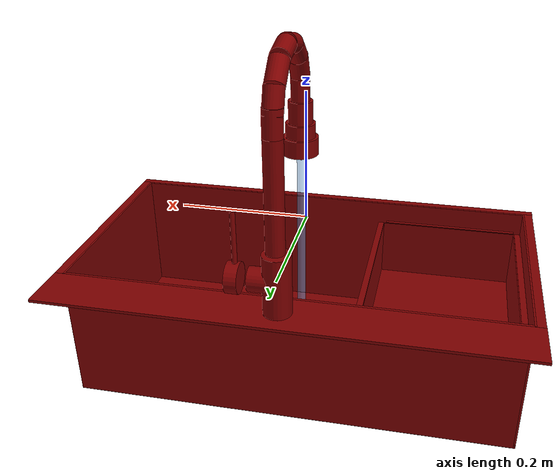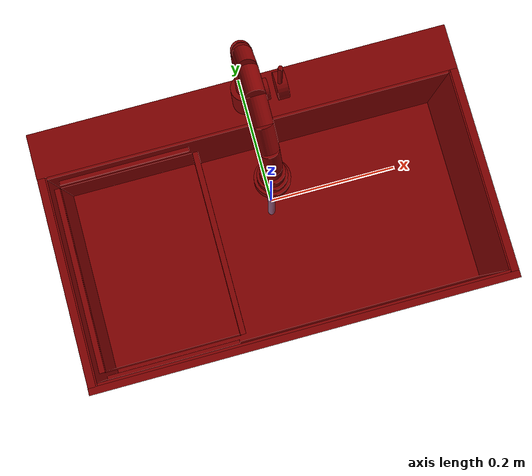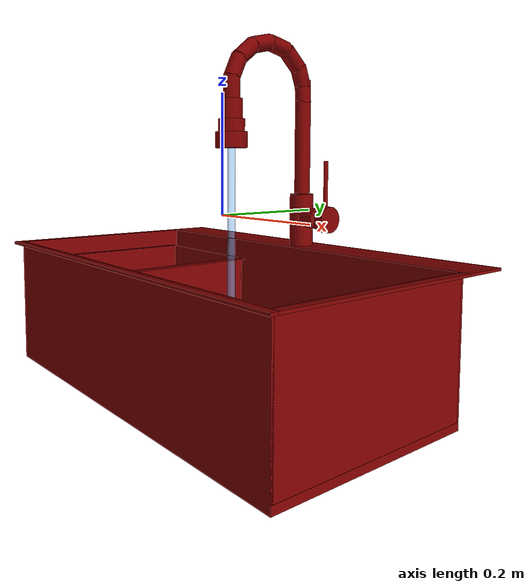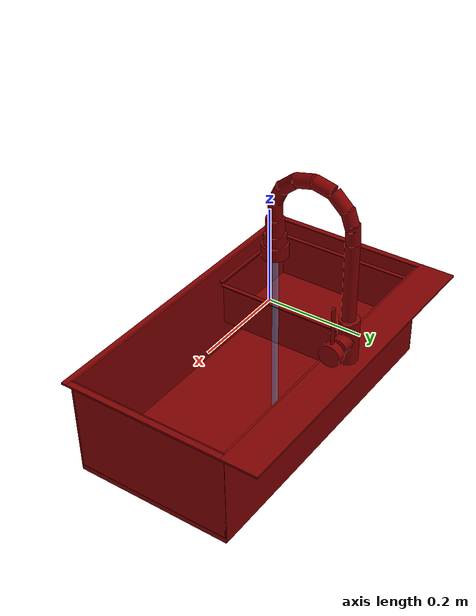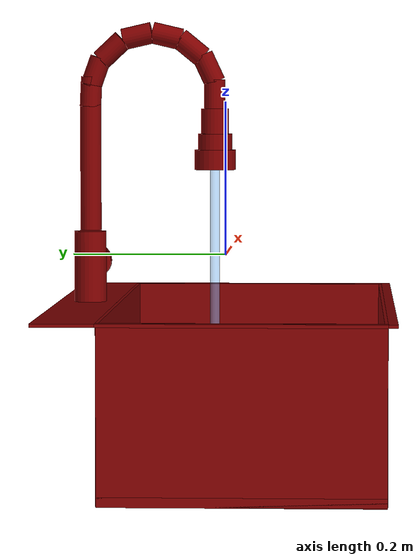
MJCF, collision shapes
<?xml version='1.0' encoding='UTF-8'?>
<mujoco model="model">
  <option timestep="0.002" gravity="0.0 0.0 -9.81"/>
  <compiler angle="radian"/>
  <asset>
    <mesh file="visuals/handle.obj" name="handle_vis"/>
    <mesh file="visuals/Body001.obj" name="Body001_vis"/>
    <mesh file="visuals/Container001.obj" name="Container001_vis"/>
    <mesh file="visuals/spout.obj" name="spout_vis"/>
    <texture file="visuals/T_BC001.png" name="Body001_material" type="2d"/>
    <material name="Body001_material" rgba="1 1 1 1.0" texture="Body001_material" shininess="0.5" specular="1"/>
    <texture file="visuals/T_BC001.png" name="handle_material" type="2d"/>
    <material name="handle_material" rgba="1 1 1 1.0" texture="handle_material" shininess="0.5" specular="1"/>
    <texture file="visuals/T_BC001.png" name="Container001_material" type="2d"/>
    <material name="Container001_material" rgba="1 1 1 1.0" texture="Container001_material" shininess="0.5" specular="1"/>
    <texture file="visuals/T_BC001.png" name="spout_material" type="2d"/>
    <material name="spout_material" rgba="1 1 1 1.0" texture="spout_material" shininess="0.5" specular="1"/>
  </asset>
  <default>
    <default class="visual">
      <geom conaffinity="0" contype="0" group="1" type="mesh"/>
    </default>
    <default class="collision">
      <geom group="0" rgba="0.5 0 0 0.5" solimp="0.998 0.998 0.001" solref="0.001 2"/>
    </default>
    <default class="spawn">
      <geom group="0" rgba="1 1 1 0.5" contype="0" conaffinity="0"/>
      <site group="0" rgba="1 1 1 0.5"/>
    </default>
    <default class="region">
      <geom group="1" conaffinity="0" contype="0" rgba="0 1 0 0"/>
    </default>
  </default>
  <worldbody>
    <body>
      <body name="object">
        <geom mesh="Body001_vis" type="mesh" solimp="0.998 0.998 0.001" solref="0.001 1" friction="0.95 0.3 0.1" class="visual" material="Body001_material"/>
        <geom type="box" pos="0.00073192 -0.03299129 -0.27749539" size="0.3497146666049957 0.17464318871498108 0.006164247635751963" quat="1.0 0.0 0.0 0.0" class="collision"/>
        <geom type="box" pos="-0.34736717 -0.03299129 -0.17230836" size="0.0016155838966369629 0.17464318871498108 0.11041142791509628" quat="1.0 0.0 0.0 0.0" class="collision"/>
        <geom type="box" pos="0.34787598 -0.03299129 -0.17230836" size="0.0021242061629891396 0.17464318871498108 0.11041142791509628" quat="1.0 0.0 0.0 0.0" class="collision"/>
        <geom type="box" pos="0.00212431 -0.20594252 -0.17230836" size="0.3478758931159973 0.0022221729159355164 0.11041142791509628" quat="1.0 0.0 0.0 0.0" class="collision"/>
        <geom type="box" pos="0.00212431 0.14016888 -0.17230836" size="0.3478758931159973 0.0021076053380966187 0.11041142791509628" quat="1.0 0.0 0.0 0.0" class="collision"/>
        <geom type="box" pos="-0.00018215 -0.21391224 -0.06405789" size="0.361817866563797 0.00599999725818634 0.002162673743441701" quat="1.0 0.0 0.0 0.0" class="collision"/>
        <geom type="box" pos="-0.00018215 0.18113536 -0.06405790" size="0.361817866563797 0.03885887563228607 0.002162670250982046" quat="1.0 0.0 0.0 0.0" class="collision"/>
        <geom type="box" pos="-0.35508907 -0.03311330 -0.06405790" size="0.006599545478820801 0.17538979649543762 0.002162670250982046" quat="1.0 0.0 0.0 0.0" class="collision"/>
        <geom type="box" pos="0.35506848 -0.03311330 -0.06405790" size="0.006599545478820801 0.17538979649543762 0.002162670250982046" quat="1.0 0.0 0.0 0.0" class="collision"/>
        <geom type="cylinder" pos="0.00371286 0.17872193 -0.01631998" size="0.021033236756920815 0.046931710094213486" quat="1.0 0.0 0.0 0.0" class="collision"/>
        <geom type="cylinder" pos="0.01977696 0.17872193 -0.01154126" size="0.01805560290813446 0.02354067750275135" quat="0.7071068286895752 -0.0 0.7071067690849304 0.0" class="collision"/>
        <geom type="box" pos="-0.22118750 -0.20119131 -0.09815853" size="0.1124766394495964 0.0037056831642985344 0.001917208544909954" quat="1.0 0.0 0.0 0.0" class="collision"/>
        <geom type="box" pos="-0.22120239 0.13461367 -0.09857126" size="0.11257906258106232 0.0037056945730000734 0.0019172141328454018" quat="1.0 0.0 0.0 0.0" class="collision"/>
        <geom type="cylinder" pos="0.19732039 0.01954303 -0.29575208" size="0.05640081316232681 0.006049513351172209" quat="1.0 0.0 0.0 0.0" class="collision"/>
        <body name="handle">
          <joint axis="1.0 0.0 0.0" pos="0.06256294 0.17883094 -0.01293303" limited="true" name="handle_temp_joint" type="hinge" range="-0.7853981633974483 0.7853981633974483" damping="0.5" frictionloss="1" armature="2"/>
          <joint axis="0.0 1.0 0.0" pos="0.06256294 0.17883094 -0.01293303" limited="true" name="handle_joint" type="hinge" range="0 0.5" damping="0.5" frictionloss="1" armature="2"/>
          <geom mesh="handle_vis" type="mesh" solimp="0.998 0.998 0.001" solref="0.001 1" friction="0.95 0.3 0.1" class="visual" material="handle_material"/>
          <geom type="cylinder" pos="0.06461661 0.17900275 -0.01212313" size="0.022960344329476357 0.00931832380592823" quat="0.7071068286895752 -0.0 0.7071067690849304 0.0" class="collision"/>
          <geom name="handle_main" type="cylinder" pos="0.06255361 0.17841353 0.05028378" size="0.0037799293641000986 0.03921017423272133" quat="1.0 0.0 0.0 0.0" class="collision"/>
        </body>
        <body name="Container001">
          <joint axis="0.0 0.0 1.0" pos="-0.22014070 -0.03248349 -0.14380588" limited="true" name="Container001_joint" range="0.0 0.1" type="slide" damping="1" frictionloss="1" armature=".01" stiffness="0.05"/>
          <geom mesh="Container001_vis" type="mesh" solimp="0.998 0.998 0.001" solref="0.001 1" friction="0.95 0.3 0.1" class="visual" material="Container001_material"/>
          <geom type="box" pos="-0.09991594 -0.03248349 -0.09486530" size="0.004775255918502808 0.15808671712875366 0.0010909452103078365" quat="1.0 0.0 0.0 0.0" class="collision"/>
          <geom type="box" pos="-0.33969355 -0.03248349 -0.09486530" size="0.004775255918502808 0.15808671712875366 0.0010909452103078365" quat="1.0 0.0 0.0 0.0" class="collision"/>
          <geom type="box" pos="-0.10419892 -0.03248349 -0.14392597" size="0.0012088071089237928 0.15808671712875366 0.04981043562293053" quat="1.0 0.0 0.0 0.0" class="collision"/>
          <geom type="box" pos="-0.33457536 -0.03248349 -0.14392597" size="0.0012088071089237928 0.15808671712875366 0.04981043562293053" quat="1.0 0.0 0.0 0.0" class="collision"/>
          <geom type="box" pos="-0.22012840 -0.19054592 -0.14392597" size="0.11565577983856201 0.0008009698358364403 0.04981043562293053" quat="1.0 0.0 0.0 0.0" class="collision"/>
          <geom type="box" pos="-0.22012840 0.12608116 -0.14392597" size="0.11565577983856201 0.000787236203905195 0.04981043562293053" quat="1.0 0.0 0.0 0.0" class="collision"/>
          <geom type="box" pos="-0.22012840 -0.03239180 -0.19287041" size="0.11565577983856201 0.157339408993721 0.0008923442801460624" quat="1.0 0.0 0.0 0.0" class="collision"/>
        </body>
        <body name="spout">
          <joint axis="0.0 0.0 1.0" pos="0.00525936 0.17804667 0.16117498" limited="true" name="spout_joint" range="-0.7853981633974483 0.7853981633974483" type="hinge" damping="10"/>
          <site type="cylinder" rgba="0.5 0.75 1 0.5" size="0.00638140132650733 0.1978125274181366" pos="0.00446494 0.01492515 -0.07317285" name="water"/>
          <geom mesh="spout_vis" type="mesh" solimp="0.998 0.998 0.001" solref="0.001 1" friction="0.95 0.3 0.1" class="visual" material="spout_material"/>
          <geom type="cylinder" pos="0.00525936 0.17804667 0.11739793" size="0.013790478929877281 0.08516550064086914" quat="1.0 0.0 0.0 0.0" class="collision" name="spout_main"/>
          <geom type="cylinder" pos="0.00525936 0.02295746 0.24349698" size="0.013969795778393745 0.01934167742729187" quat="0.9760962128639221 -0.21733887493610382 -4.825892462003796e-17 -1.4813594926408824e-24" class="collision"/>
          <geom type="cylinder" pos="0.00525936 0.01453892 0.16632542" size="0.018029872328042984 0.025090152397751808" quat="1.0 0.0 0.0 0.0" class="collision"/>
          <geom type="cylinder" pos="0.00525936 0.01453892 0.12446316" size="0.026646068319678307 0.013089129701256752" quat="1.0 0.0 0.0 0.0" class="collision"/>
          <geom type="cylinder" pos="0.00525936 0.01453892 0.14767391" size="0.02208315208554268 0.010847726836800575" quat="1.0 0.0 0.0 0.0" class="collision"/>
          <geom type="cylinder" pos="0.00525936 0.01503629 0.20992848" size="0.013969792984426022 0.019341671839356422" quat="1.0 0.0 0.0 0.0" class="collision"/>
          <geom type="cylinder" pos="0.00525936 0.04582175 0.27084654" size="0.013969795778393745 0.01934167556464672" quat="0.9037017226219177 -0.4281626343727112 -9.507122284528399e-17 -5.979415383572825e-24" class="collision"/>
          <geom type="cylinder" pos="0.00525936 0.07760919 0.28633350" size="0.013969795778393745 0.01934167556464672" quat="0.7836740016937256 -0.621172308921814 -1.3792795992491368e-16 5.023387752787334e-24" class="collision"/>
          <geom type="cylinder" pos="0.00525936 0.11610991 0.28628838" size="0.013969795778393745 0.01934167556464672" quat="0.6228312253952026 -0.7823562622070312 -1.7371800038727426e-16 -6.608960306958117e-24" class="collision"/>
          <geom type="cylinder" pos="0.00525936 0.14992280 0.26795905" size="0.013969795778393745 0.01934167556464672" quat="0.3958962559700012 -0.9182952642440796 -2.0390250915360388e-16 -1.938891836250058e-23" class="collision"/>
          <geom type="cylinder" pos="0.00525936 0.17118394 0.23915015" size="0.013969795778393745 0.01934167370200157" quat="0.1707230657339096 -0.9853190779685974 -2.1878483833219254e-16 1.121014832276458e-24" class="collision"/>
          <geom type="cylinder" pos="0.00525936 0.17746343 0.21367657" size="0.013969795778393745 0.01934167556464672" quat="0.023438289761543274 -0.9997252821922302 -2.219836053179392e-16 -1.694311507929163e-23" class="collision"/>
        </body>
        <geom class="region" name="reg_basin" type="box" pos="0.124721265 -0.032660565 -0.16663175" size="0.21828687500000002 0.169658045 0.10430504999999998"/>
        <geom class="region" name="reg_main" type="box" pos="4.999999997368221e-09 4.099999999999937e-05 -0.181848385" size="0.363000195 0.22095324 0.12095315499999999"/>
      </body>
    </body>
  </worldbody>
  <actuator>
    <motor name="handle_joint_actuator" joint="handle_joint" gear="10"/>
    <motor name="handle_temp_joint_actuator" joint="handle_temp_joint" gear="10"/>
    <motor name="Container001_joint_actuator" joint="Container001_joint" gear="10"/>
    <motor name="spout_joint_actuator" joint="spout_joint" gear="10"/>
  </actuator>
</mujoco>
